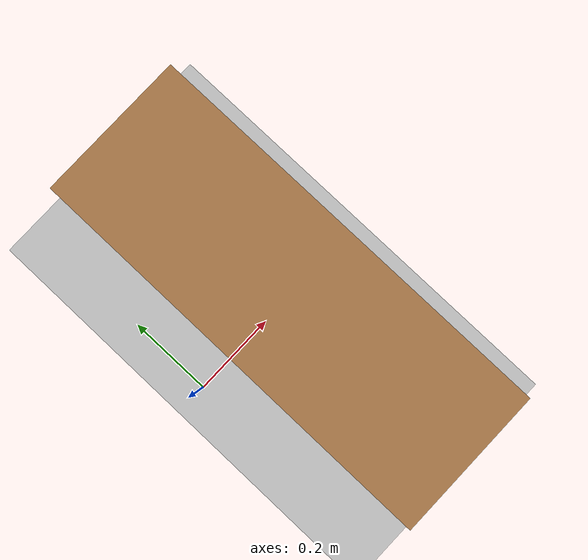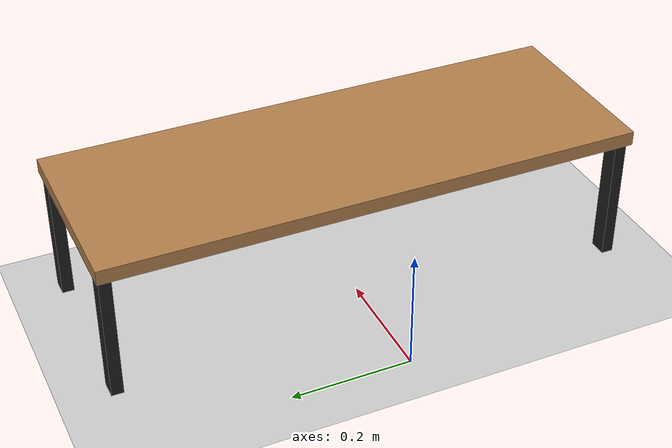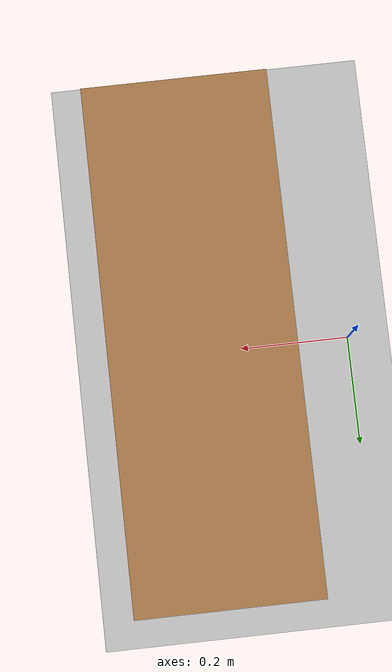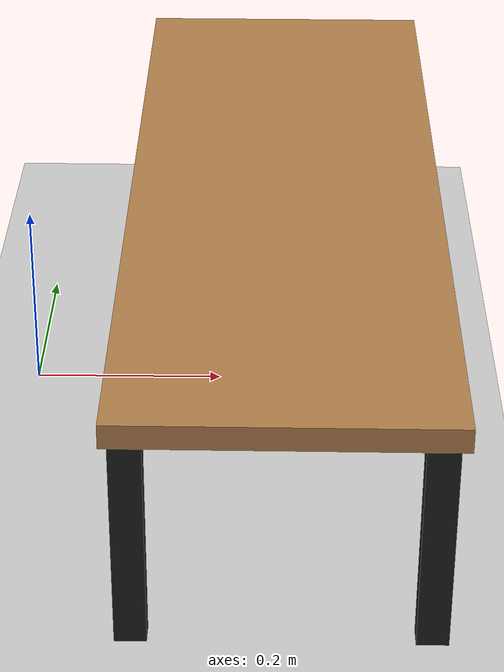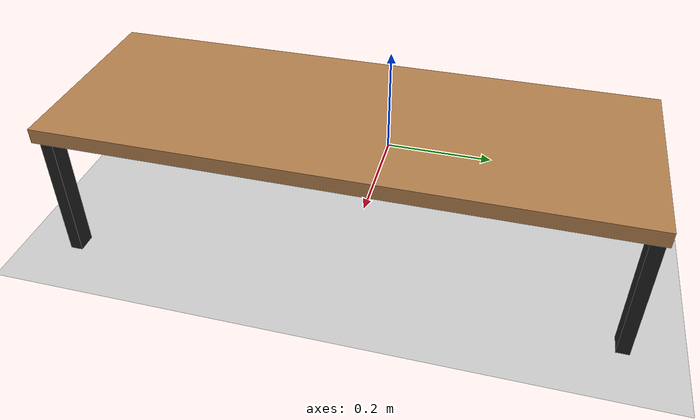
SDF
<?xml version="1.0"?>
<sdf version="1.6">
  <world name="default">
    <!-- A global light source -->
    <include>
      <uri>model://sun</uri>
    </include>
    <!-- A ground plane -->
    <include>
      <uri>model://ground_plane</uri>
    </include>

    <include>
      <uri>model://desk</uri>
    </include>

    <gui fullscreen='0'>
        <camera name='user_camera'>
          <pose> 1.560895 0.053216 1.280695 0.0 0.597797 2.961806</pose>
          <view_controller>orbit</view_controller>
        </camera>
    </gui>

    <physics type="ode">
        <real_time_update_rate>1000.0</real_time_update_rate>
        <max_step_size>0.002</max_step_size>
        <real_time_factor>1</real_time_factor>
        <ode>
          <solver>
            <type>quick</type>
            <iters>150</iters>
            <precon_iters>0</precon_iters>
            <sor>1.300000</sor>
            <use_dynamic_moi_rescaling>1</use_dynamic_moi_rescaling>
          </solver>
        </ode>
    </physics>
  </world>
</sdf>

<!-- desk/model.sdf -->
<sdf version='1.6'>
    <model name='desk'>
      <pose frame=''>-0.050799 0 0 0 0 0</pose>
      <static>true</static>
      <allow_auto_disable>1</allow_auto_disable>

      <link name='desk_link'>
        <pose>0.32 -0.0015 0.22800 0 0 0</pose>
          <inertial>
            <pose frame=''>0 0 0 0 0 0</pose>
            <mass>30</mass>
            <inertia>
              <ixx>1</ixx>
              <ixy>0</ixy>
              <ixz>0</ixz>
              <iyy>1</iyy>
              <iyz>0</iyz>
              <izz>1</izz>
            </inertia>
          </inertial>

          <gravity>1</gravity>
          <velocity_decay/>
          <self_collide>1</self_collide>
          <enable_wind>0</enable_wind>
          <kinematic>0</kinematic>

          <visual name='desk_visual'>
            <pose frame=''>0 0 0 0 0 0</pose>
            <geometry>
                <box>
                  <size> 0.32 0.9 0.024</size>
                </box>
            </geometry>
            <material>
              <script>
                <name>Gazebo/Wood</name>
                <uri>file://media/materials/scripts/gazebo.material</uri>
              </script>
              <shader type='pixel'/>
            </material>
            <transparency>0</transparency>
            <cast_shadows>1</cast_shadows>
          </visual>

          <collision name="desk_collision">
            <pose frame=''>0 0 0 0 0 0</pose>
            <geometry>
              <box>
                <size> 0.32 0.9 0.024</size>
              </box>
            </geometry>
          </collision>
      </link>

      <link name='leg_link1'>
        <pose frame=''>0.456 0.435 0.11 0 0 0</pose>
          <inertial>
            <pose frame=''>0 0 0 0 0 0</pose>
            <mass>5</mass>
            <inertia>
              <ixx>1</ixx>
              <ixy>0</ixy>
              <ixz>0</ixz>
              <iyy>1</iyy>
              <iyz>0</iyz>
              <izz>1</izz>
            </inertia>
          </inertial>

          <gravity>1</gravity>
          <velocity_decay/>
          <self_collide>1</self_collide>
          <enable_wind>0</enable_wind>
          <kinematic>0</kinematic>

          <visual name='leg_visual1'>
            <pose frame=''>0 0 0 0 0 0</pose>
            <geometry>
                <box>
                  <size> 0.03 0.02 0.22</size>
                </box>
            </geometry>
            <material>
              <script>
                <name>Gazebo/FlatBlack</name>
                <uri>file://media/materials/scripts/gazebo.material</uri>
              </script>
              <shader type='pixel'/>
            </material>
            <transparency>0</transparency>
            <cast_shadows>1</cast_shadows>
          </visual>

          <collision name="leg_collision1">
            <pose frame=''>0 0 0 0 0 0</pose>
            <geometry>
              <box>
                <size> 0.03 0.02 0.22</size>
              </box>
            </geometry>
          </collision>
      </link>

      <link name='leg_link2'>
        <pose frame=''>0.456 -0.435 0.11 0 0 0</pose>
          <inertial>
            <pose frame=''>0 0 0 0 0 0</pose>
            <mass>5</mass>
            <inertia>
              <ixx>1</ixx>
              <ixy>0</ixy>
              <ixz>0</ixz>
              <iyy>1</iyy>
              <iyz>0</iyz>
              <izz>1</izz>
            </inertia>
          </inertial>

          <gravity>1</gravity>
          <velocity_decay/>
          <self_collide>1</self_collide>
          <enable_wind>0</enable_wind>
          <kinematic>0</kinematic>

          <visual name='leg_visual2'>
            <pose frame=''>0 0 0 0 0 0</pose>
            <geometry>
                <box>
                  <size> 0.03 0.02 0.22</size>
                </box>
            </geometry>
            <material>
              <script>
                <name>Gazebo/FlatBlack</name>
                <uri>file://media/materials/scripts/gazebo.material</uri>
              </script>
              <shader type='pixel'/>
            </material>
            <transparency>0</transparency>
            <cast_shadows>1</cast_shadows>
          </visual>

          <collision name="leg_collision2">
            <pose frame=''>0 0 0 0 0 0</pose>
            <geometry>
              <box>
                <size> 0.03 0.02 0.22</size>
              </box>
            </geometry>
          </collision>
      </link>

      <link name='leg_link3'>
        <pose frame=''>0.182 -0.435 0.11 0 0 0</pose>
          <inertial>
            <pose frame=''>0 0 0 0 0 0</pose>
            <mass>5</mass>
            <inertia>
              <ixx>1</ixx>
              <ixy>0</ixy>
              <ixz>0</ixz>
              <iyy>1</iyy>
              <iyz>0</iyz>
              <izz>1</izz>
            </inertia>
          </inertial>

          <gravity>1</gravity>
          <velocity_decay/>
          <self_collide>1</self_collide>
          <enable_wind>0</enable_wind>
          <kinematic>0</kinematic>

          <visual name='leg_visual3'>
            <pose frame=''>0 0 0 0 0 0</pose>
            <geometry>
                <box>
                  <size> 0.03 0.02 0.22</size>
                </box>
            </geometry>
            <material>
              <script>
                <name>Gazebo/FlatBlack</name>
                <uri>file://media/materials/scripts/gazebo.material</uri>
              </script>
              <shader type='pixel'/>
            </material>
            <transparency>0</transparency>
            <cast_shadows>1</cast_shadows>
          </visual>

          <collision name="leg_collision3">
            <pose frame=''>0 0 0 0 0 0</pose>
            <geometry>
              <box>
                <size> 0.03 0.02 0.22</size>
              </box>
            </geometry>
          </collision>
      </link>

      <link name='leg_link4'>
        <pose frame=''>0.182 0.435 0.11 0 0 0</pose>
          <inertial>
            <pose frame=''>0 0 0 0 0 0</pose>
            <mass>5</mass>
            <inertia>
              <ixx>1</ixx>
              <ixy>0</ixy>
              <ixz>0</ixz>
              <iyy>1</iyy>
              <iyz>0</iyz>
              <izz>1</izz>
            </inertia>
          </inertial>

          <gravity>1</gravity>
          <velocity_decay/>
          <self_collide>1</self_collide>
          <enable_wind>0</enable_wind>
          <kinematic>0</kinematic>

          <visual name='leg_visual4'>
            <pose frame=''>0 0 0 0 0 0</pose>
            <geometry>
                <box>
                  <size> 0.03 0.02 0.22</size>
                </box>
            </geometry>
            <material>
              <script>
                <name>Gazebo/FlatBlack</name>
                <uri>file://media/materials/scripts/gazebo.material</uri>
              </script>
              <shader type='pixel'/>
            </material>
            <transparency>0</transparency>
            <cast_shadows>1</cast_shadows>
          </visual>

          <collision name="leg_collision4">
            <pose frame=''>0 0 0 0 0 0</pose>
            <geometry>
              <box>
                <size> 0.03 0.02 0.22</size>
              </box>
            </geometry>
          </collision>
      </link>

    </model>
  </sdf>
